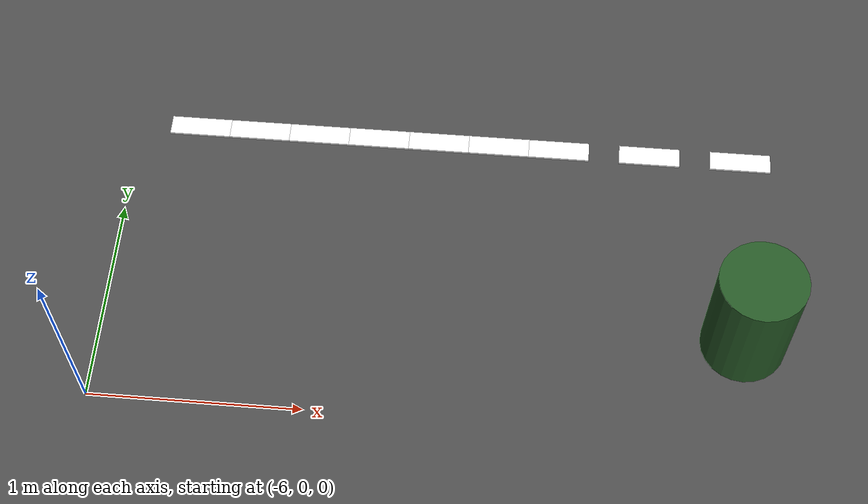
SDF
<sdf version="1.10">
 <world name="igvc_autonav">
  <model name="ground_plane">
   <static>true</static>
   <link name="link">
    <collision name="collision">
     <geometry><plane><normal>0 0 1</normal><size>60 60</size></plane></geometry>
     <surface><friction><ode><mu>0.80000000000000004</mu><mu2>0.80000000000000004</mu2></ode></friction></surface>
    </collision>
    <visual name="visual">
     <geometry><plane><normal>0 0 1</normal><size>60 60</size></plane></geometry>
     <material>
      <ambient>0.25 0.25 0.25 1</ambient>
      <diffuse>0.300000012 0.300000012 0.300000012 1</diffuse>
      <specular>0.100000001 0.100000001 0.100000001 1</specular>
     </material>
    </visual>
    <inertial>
     <mass>1</mass>
     <inertia><ixx>1</ixx><ixy>0</ixy><ixz>0</ixz><iyy>1</iyy><iyz>0</iyz><izz>1</izz></inertia>
    </inertial>
   </link>
  </model>
  <model name="lane_inner_1">
   <static>true</static>
   <pose>-5.7000000000000002 1.5 0.01 0 0 0</pose>
   <link name="link">
    <visual name="visual">
     <geometry><box><size>0.29999999999999999 0.10000000000000001 0.01</size></box></geometry>
     <material><ambient>1 1 1 1</ambient><diffuse>1 1 1 1</diffuse><emissive>1 1 1 1</emissive></material>
    </visual>
    <inertial>
     <mass>1</mass>
     <inertia><ixx>1</ixx><ixy>0</ixy><ixz>0</ixz><iyy>1</iyy><iyz>0</iyz><izz>1</izz></inertia>
    </inertial>
   </link>
  </model>
  <model name="lane_inner_2">
   <static>true</static>
   <pose>-5.4000000000000004 1.5 0.01 0 0 0</pose>
   <link name="link">
    <visual name="visual">
     <geometry><box><size>0.29999999999999999 0.10000000000000001 0.01</size></box></geometry>
     <material><ambient>1 1 1 1</ambient><diffuse>1 1 1 1</diffuse><emissive>1 1 1 1</emissive></material>
    </visual>
    <inertial>
     <mass>1</mass>
     <inertia><ixx>1</ixx><ixy>0</ixy><ixz>0</ixz><iyy>1</iyy><iyz>0</iyz><izz>1</izz></inertia>
    </inertial>
   </link>
  </model>
  <model name="lane_inner_3">
   <static>true</static>
   <pose>-5.0999999999999996 1.5 0.01 0 0 0</pose>
   <link name="link">
    <visual name="visual">
     <geometry><box><size>0.29999999999999999 0.10000000000000001 0.01</size></box></geometry>
     <material><ambient>1 1 1 1</ambient><diffuse>1 1 1 1</diffuse><emissive>1 1 1 1</emissive></material>
    </visual>
    <inertial>
     <mass>1</mass>
     <inertia><ixx>1</ixx><ixy>0</ixy><ixz>0</ixz><iyy>1</iyy><iyz>0</iyz><izz>1</izz></inertia>
    </inertial>
   </link>
  </model>
  <model name="lane_inner_4">
   <static>true</static>
   <pose>-4.7999999999999998 1.5 0.01 0 0 0</pose>
   <link name="link">
    <visual name="visual">
     <geometry><box><size>0.29999999999999999 0.10000000000000001 0.01</size></box></geometry>
     <material><ambient>1 1 1 1</ambient><diffuse>1 1 1 1</diffuse><emissive>1 1 1 1</emissive></material>
    </visual>
    <inertial>
     <mass>1</mass>
     <inertia><ixx>1</ixx><ixy>0</ixy><ixz>0</ixz><iyy>1</iyy><iyz>0</iyz><izz>1</izz></inertia>
    </inertial>
   </link>
  </model>
  <model name="lane_inner_5">
   <static>true</static>
   <pose>-4.5 1.5 0.01 0 0 0</pose>
   <link name="link">
    <visual name="visual">
     <geometry><box><size>0.29999999999999999 0.10000000000000001 0.01</size></box></geometry>
     <material><ambient>1 1 1 1</ambient><diffuse>1 1 1 1</diffuse><emissive>1 1 1 1</emissive></material>
    </visual>
    <inertial>
     <mass>1</mass>
     <inertia><ixx>1</ixx><ixy>0</ixy><ixz>0</ixz><iyy>1</iyy><iyz>0</iyz><izz>1</izz></inertia>
    </inertial>
   </link>
  </model>
  <model name="lane_inner_6">
   <static>true</static>
   <pose>-4.2000000000000002 1.5 0.01 0 0 0</pose>
   <link name="link">
    <visual name="visual">
     <geometry><box><size>0.29999999999999999 0.10000000000000001 0.01</size></box></geometry>
     <material><ambient>1 1 1 1</ambient><diffuse>1 1 1 1</diffuse><emissive>1 1 1 1</emissive></material>
    </visual>
    <inertial>
     <mass>1</mass>
     <inertia><ixx>1</ixx><ixy>0</ixy><ixz>0</ixz><iyy>1</iyy><iyz>0</iyz><izz>1</izz></inertia>
    </inertial>
   </link>
  </model>
  <model name="lane_inner_7">
   <static>true</static>
   <pose>-3.8999999999999999 1.5 0.01 0 0 0</pose>
   <link name="link">
    <visual name="visual">
     <geometry><box><size>0.29999999999999999 0.10000000000000001 0.01</size></box></geometry>
     <material><ambient>1 1 1 1</ambient><diffuse>1 1 1 1</diffuse><emissive>1 1 1 1</emissive></material>
    </visual>
    <inertial>
     <mass>1</mass>
     <inertia><ixx>1</ixx><ixy>0</ixy><ixz>0</ixz><iyy>1</iyy><iyz>0</iyz><izz>1</izz></inertia>
    </inertial>
   </link>
  </model>
  <model name="lane_inner_8">
   <static>true</static>
   <pose>-3.4500000000000002 1.5 0.01 0 0 0</pose>
   <link name="link">
    <visual name="visual">
     <geometry><box><size>0.29999999999999999 0.10000000000000001 0.01</size></box></geometry>
     <material><ambient>1 1 1 1</ambient><diffuse>1 1 1 1</diffuse><emissive>1 1 1 1</emissive></material>
    </visual>
    <inertial>
     <mass>1</mass>
     <inertia><ixx>1</ixx><ixy>0</ixy><ixz>0</ixz><iyy>1</iyy><iyz>0</iyz><izz>1</izz></inertia>
    </inertial>
   </link>
  </model>
  <model name="lane_inner_9">
   <static>true</static>
   <pose>-3 1.5 0.01 0 0 0</pose>
   <link name="link">
    <visual name="visual">
     <geometry><box><size>0.29999999999999999 0.10000000000000001 0.01</size></box></geometry>
     <material><ambient>1 1 1 1</ambient><diffuse>1 1 1 1</diffuse><emissive>1 1 1 1</emissive></material>
    </visual>
    <inertial>
     <mass>1</mass>
     <inertia><ixx>1</ixx><ixy>0</ixy><ixz>0</ixz><iyy>1</iyy><iyz>0</iyz><izz>1</izz></inertia>
    </inertial>
   </link>
  </model>
  <model name="trash_can_1">
   <static>true</static>
   <link name="link">
    <collision name="collision">
     <pose>0 0 0.29999999999999999 0 0 0</pose>
     <geometry>
      <cylinder><radius>0.20000000000000001</radius><length>0.59999999999999998</length></cylinder>
     </geometry>
    </collision>
    <visual name="visual">
     <pose>0 0 0.29999999999999999 0 0 0</pose>
     <geometry>
      <cylinder><radius>0.20000000000000001</radius><length>0.59999999999999998</length></cylinder>
     </geometry>
     <material>
      <ambient>0.100000001 0.300000012 0.100000001 1</ambient>
      <diffuse>0.150000006 0.349999994 0.150000006 1</diffuse>
      <specular>0.100000001 0.100000001 0.100000001 1</specular>
     </material>
    </visual>
    <inertial>
     <mass>1</mass>
     <inertia><ixx>1</ixx><ixy>0</ixy><ixz>0</ixz><iyy>1</iyy><iyz>0</iyz><izz>1</izz></inertia>
    </inertial>
   </link>
   <pose>-3 0.5 0 0 0 0</pose>
  </model>
 </world>
</sdf>
